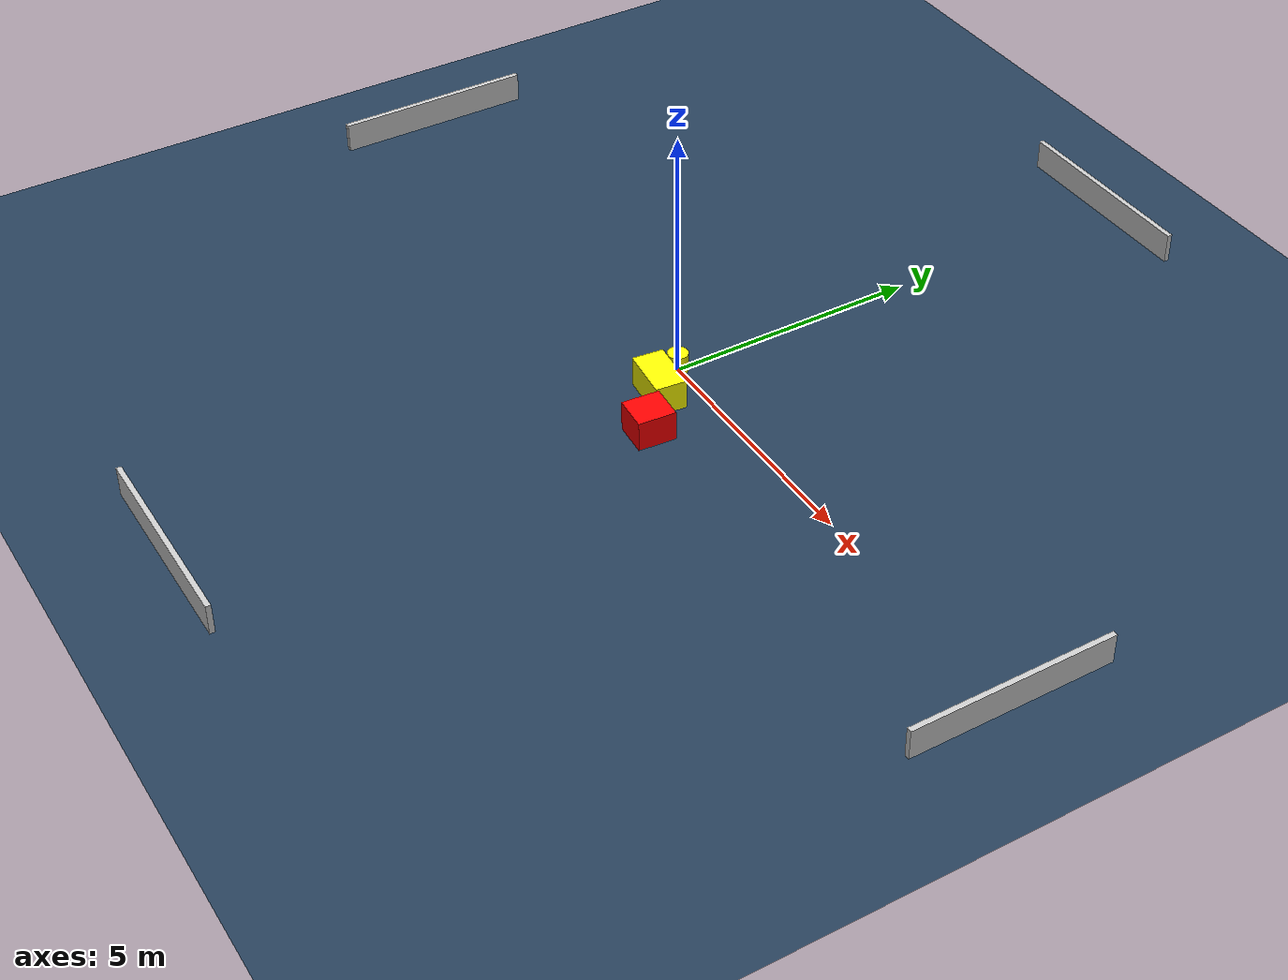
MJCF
<?xml version="1.0" ?>
<mujoco model="generated_environment">
  <option timestep="0.01" integrator="RK4" cone="elliptic"/>
  <default>
    <geom density="1"/>
  </default>
  <asset>
    <texture builtin="gradient" height="3072" name="skybox" rgb1="0.3 0.5 0.7" rgb2="0 0 0" type="skybox" width="512"/>
    <texture builtin="checker" height="300" name="groundplane" rgb1="0.2 0.3 0.4" rgb2="0.1 0.2 0.3" type="2d" width="300"/>
    <material name="groundplane" reflectance="0.2" texrepeat="5 5" texture="groundplane"/>
  </asset>
  <worldbody>
    <light dir="0 0 -1" directional="true" pos="0 0 1.5"/>
    <geom condim="3" friction="0.5 0.005 0.001" material="groundplane" name="floor" pos="0 0 0" size="0 0 0.05" type="plane"/>
    <body name="walls">
      <geom name="wall_1" condim="4" pos="-10.0 0.0 0.3" rgba="0.800000011920929 0.800000011920929 0.800000011920929 1.0" size="0.05 2.0 0.3" type="box"/>
      <geom name="wall_2" condim="4" pos="10.0 0.0 0.3" rgba="0.800000011920929 0.800000011920929 0.800000011920929 1.0" size="0.05 2.0 0.3" type="box"/>
      <geom name="wall_3" condim="4" pos="0.0 -10.0 0.3" rgba="0.800000011920929 0.800000011920929 0.800000011920929 1.0" size="2.0 0.05 0.3" type="box"/>
      <geom name="wall_4" condim="4" pos="0.0 10.0 0.3" rgba="0.800000011920929 0.800000011920929 0.800000011920929 1.0" size="2.0 0.05 0.3" type="box"/>
    </body>
    <body name="robot">
      <joint name="joint_x" type="slide" pos="0 0 0" axis="1 0 0"/>
      <joint name="joint_y" type="slide" pos="0 0 0" axis="0 1 0"/>
      <geom name="robot" type="cylinder" pos="0.0 0.0 0.2" size="0.2 0.2 0.0" mass="5.0" friction="1.0 0.005 0.0001" condim="4" rgba="1.0 1.0 0.0 1.0"/>
    </body>
    <body name="obstacle_1_movable">
      <geom name="obstacle_1_movable" condim="4" pos="0.47632384527892613 -0.6792627922344154 0.3" euler="0 0 353.9728570945999" friction="0.0 0.005 0.001" rgba="1.0 1.0 0.0 1.0" size="0.5175842545793194 0.30836132083652595 0.3" type="box" mass="0.1"/>
      <joint type="free"/>
    </body>
    <body name="obstacle_2_static">
      <geom name="obstacle_2_static" condim="4" pos="1.3150950843127664 -1.402148790040081 0.3" euler="0 0 265.5975110678552" friction="0.0 0.005 0.001" rgba="1.0 0.0 0.0 1.0" size="0.370452273995714 0.3461927255065505 0.3" type="box"/>
    </body>
  </worldbody>
  <actuator>
    <motor name="actuator_x" joint="joint_x" gear="1" ctrlrange="-1 1"/>
    <motor name="actuator_y" joint="joint_y" gear="1" ctrlrange="-1 1"/>
  </actuator>
</mujoco>
